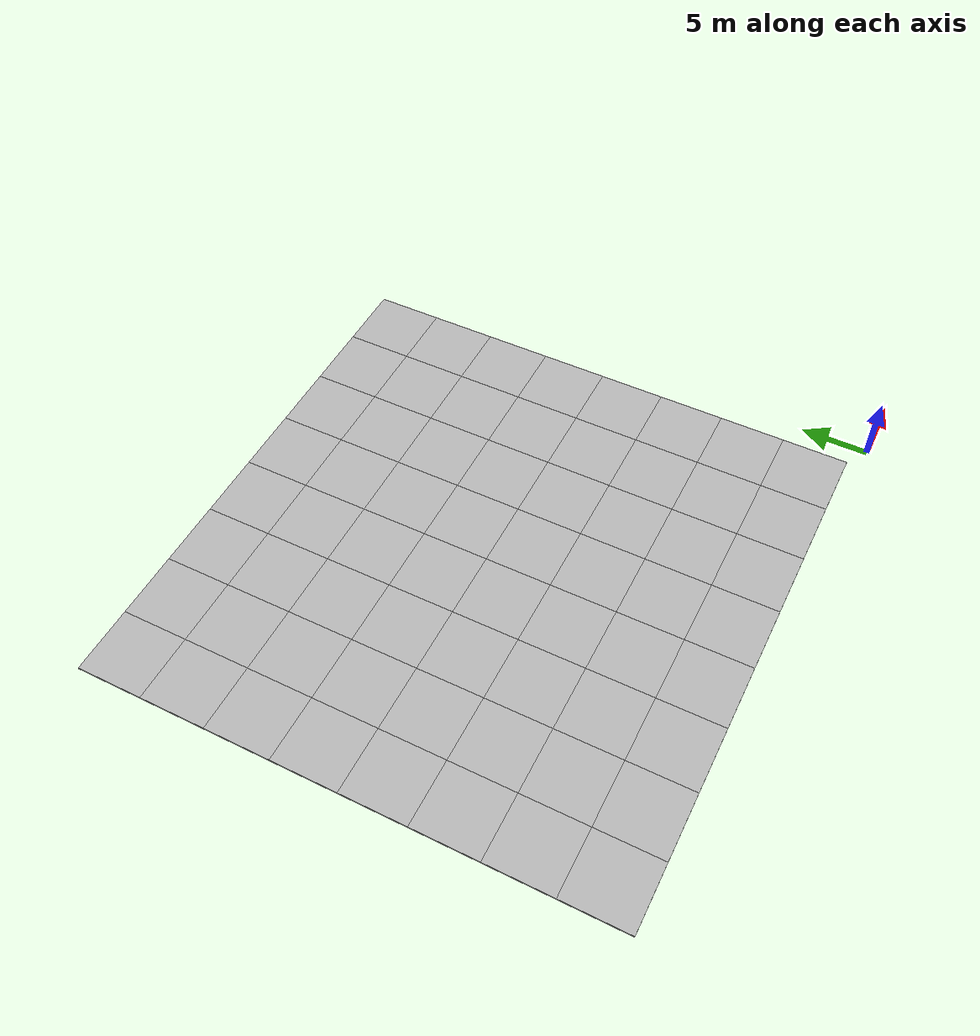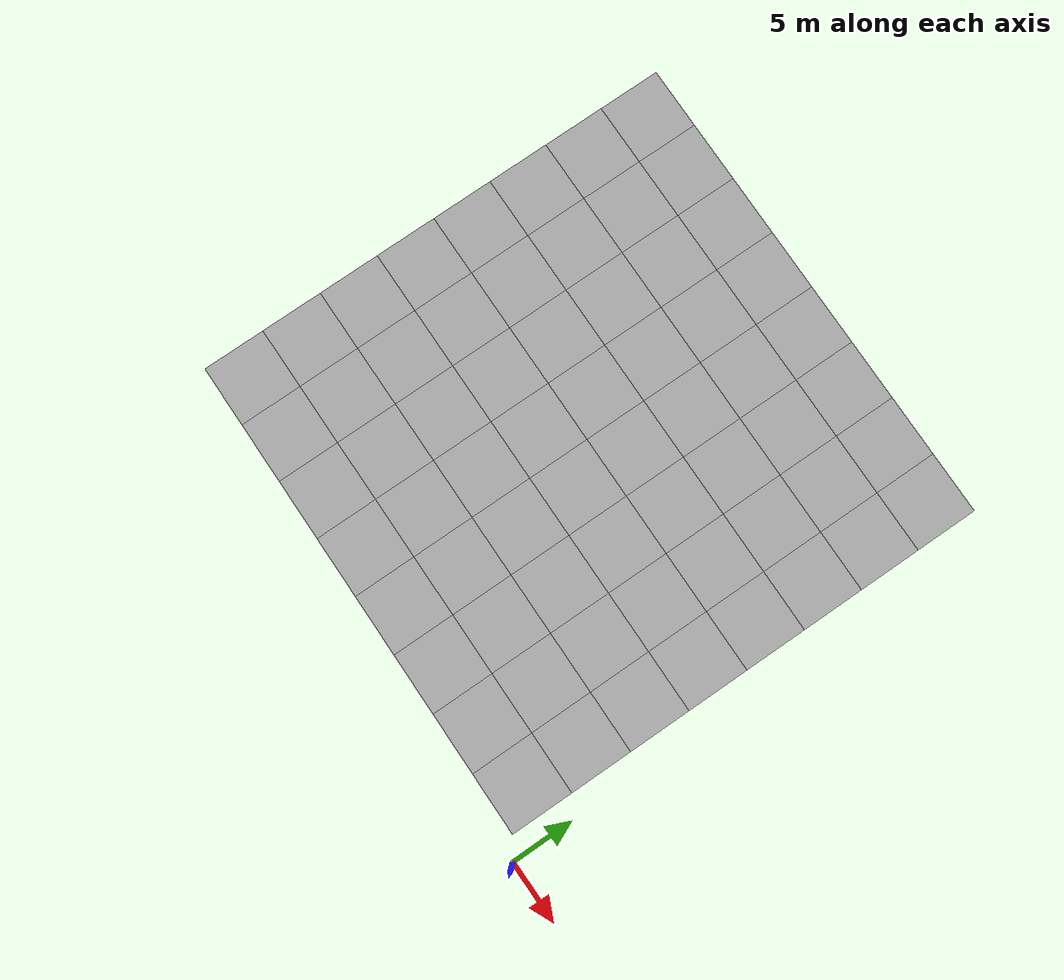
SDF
<sdf version="1.7">
 <world name="default">
  <model name="mud_plane_80x80_1">
   <model name="mud_plane_40x40_0">
    <model name="mud_plane_20x20">
     <model name="mud_plane">
      <static>1</static>
      <link name="link">
       <collision name="collision"><geometry><box><size>10 10 0.1</size></box></geometry></collision>
       <visual name="visual_1">
        <pose>-2.5 2.5 -0.05 0 -0 0</pose>
        <cast_shadows>0</cast_shadows>
        <geometry><box><size>5 5 0.1</size></box></geometry>
        <material>
         <script>
          <uri>model://mud_plane/materials/scripts</uri>
          <uri>model://mud_plane/materials/textures</uri>
          <name>vrc/mud</name>
         </script>
        </material>
       </visual>
       <visual name="visual_2">
        <pose>2.5 2.5 -0.05 0 -0 0</pose>
        <cast_shadows>0</cast_shadows>
        <geometry><box><size>5 5 0.1</size></box></geometry>
        <material>
         <script>
          <uri>model://mud_plane/materials/scripts</uri>
          <uri>model://mud_plane/materials/textures</uri>
          <name>vrc/mud</name>
         </script>
        </material>
       </visual>
       <visual name="visual_3">
        <pose>2.5 -2.5 -0.05 0 -0 0</pose>
        <cast_shadows>0</cast_shadows>
        <geometry><box><size>5 5 0.1</size></box></geometry>
        <material>
         <script>
          <uri>model://mud_plane/materials/scripts</uri>
          <uri>model://mud_plane/materials/textures</uri>
          <name>vrc/mud</name>
         </script>
        </material>
       </visual>
       <visual name="visual_4">
        <pose>-2.5 -2.5 -0.05 0 -0 0</pose>
        <cast_shadows>0</cast_shadows>
        <geometry><box><size>5 5 0.1</size></box></geometry>
        <material>
         <script>
          <uri>model://mud_plane/materials/scripts</uri>
          <uri>model://mud_plane/materials/textures</uri>
          <name>vrc/mud</name>
         </script>
        </material>
       </visual>
      </link>
      <pose>-4.99986 -4.99991 0 0 -0 0</pose>
     </model>
     <model name="mud_plane_0">
      <static>1</static>
      <link name="link">
       <collision name="collision"><geometry><box><size>10 10 0.1</size></box></geometry></collision>
       <visual name="visual_1">
        <pose>-2.5 2.5 -0.05 0 -0 0</pose>
        <cast_shadows>0</cast_shadows>
        <geometry><box><size>5 5 0.1</size></box></geometry>
        <material>
         <script>
          <uri>model://mud_plane/materials/scripts</uri>
          <uri>model://mud_plane/materials/textures</uri>
          <name>vrc/mud</name>
         </script>
        </material>
       </visual>
       <visual name="visual_2">
        <pose>2.5 2.5 -0.05 0 -0 0</pose>
        <cast_shadows>0</cast_shadows>
        <geometry><box><size>5 5 0.1</size></box></geometry>
        <material>
         <script>
          <uri>model://mud_plane/materials/scripts</uri>
          <uri>model://mud_plane/materials/textures</uri>
          <name>vrc/mud</name>
         </script>
        </material>
       </visual>
       <visual name="visual_3">
        <pose>2.5 -2.5 -0.05 0 -0 0</pose>
        <cast_shadows>0</cast_shadows>
        <geometry><box><size>5 5 0.1</size></box></geometry>
        <material>
         <script>
          <uri>model://mud_plane/materials/scripts</uri>
          <uri>model://mud_plane/materials/textures</uri>
          <name>vrc/mud</name>
         </script>
        </material>
       </visual>
       <visual name="visual_4">
        <pose>-2.5 -2.5 -0.05 0 -0 0</pose>
        <cast_shadows>0</cast_shadows>
        <geometry><box><size>5 5 0.1</size></box></geometry>
        <material>
         <script>
          <uri>model://mud_plane/materials/scripts</uri>
          <uri>model://mud_plane/materials/textures</uri>
          <name>vrc/mud</name>
         </script>
        </material>
       </visual>
      </link>
      <pose>-4.99946 4.99954 0 0 -0 0</pose>
     </model>
     <model name="mud_plane_1">
      <static>1</static>
      <link name="link">
       <collision name="collision"><geometry><box><size>10 10 0.1</size></box></geometry></collision>
       <visual name="visual_1">
        <pose>-2.5 2.5 -0.05 0 -0 0</pose>
        <cast_shadows>0</cast_shadows>
        <geometry><box><size>5 5 0.1</size></box></geometry>
        <material>
         <script>
          <uri>model://mud_plane/materials/scripts</uri>
          <uri>model://mud_plane/materials/textures</uri>
          <name>vrc/mud</name>
         </script>
        </material>
       </visual>
       <visual name="visual_2">
        <pose>2.5 2.5 -0.05 0 -0 0</pose>
        <cast_shadows>0</cast_shadows>
        <geometry><box><size>5 5 0.1</size></box></geometry>
        <material>
         <script>
          <uri>model://mud_plane/materials/scripts</uri>
          <uri>model://mud_plane/materials/textures</uri>
          <name>vrc/mud</name>
         </script>
        </material>
       </visual>
       <visual name="visual_3">
        <pose>2.5 -2.5 -0.05 0 -0 0</pose>
        <cast_shadows>0</cast_shadows>
        <geometry><box><size>5 5 0.1</size></box></geometry>
        <material>
         <script>
          <uri>model://mud_plane/materials/scripts</uri>
          <uri>model://mud_plane/materials/textures</uri>
          <name>vrc/mud</name>
         </script>
        </material>
       </visual>
       <visual name="visual_4">
        <pose>-2.5 -2.5 -0.05 0 -0 0</pose>
        <cast_shadows>0</cast_shadows>
        <geometry><box><size>5 5 0.1</size></box></geometry>
        <material>
         <script>
          <uri>model://mud_plane/materials/scripts</uri>
          <uri>model://mud_plane/materials/textures</uri>
          <name>vrc/mud</name>
         </script>
        </material>
       </visual>
      </link>
      <pose>4.99964 -4.99949 0 0 -0 0</pose>
     </model>
     <model name="mud_plane_2">
      <static>1</static>
      <link name="link">
       <collision name="collision"><geometry><box><size>10 10 0.1</size></box></geometry></collision>
       <visual name="visual_1">
        <pose>-2.5 2.5 -0.05 0 -0 0</pose>
        <cast_shadows>0</cast_shadows>
        <geometry><box><size>5 5 0.1</size></box></geometry>
        <material>
         <script>
          <uri>model://mud_plane/materials/scripts</uri>
          <uri>model://mud_plane/materials/textures</uri>
          <name>vrc/mud</name>
         </script>
        </material>
       </visual>
       <visual name="visual_2">
        <pose>2.5 2.5 -0.05 0 -0 0</pose>
        <cast_shadows>0</cast_shadows>
        <geometry><box><size>5 5 0.1</size></box></geometry>
        <material>
         <script>
          <uri>model://mud_plane/materials/scripts</uri>
          <uri>model://mud_plane/materials/textures</uri>
          <name>vrc/mud</name>
         </script>
        </material>
       </visual>
       <visual name="visual_3">
        <pose>2.5 -2.5 -0.05 0 -0 0</pose>
        <cast_shadows>0</cast_shadows>
        <geometry><box><size>5 5 0.1</size></box></geometry>
        <material>
         <script>
          <uri>model://mud_plane/materials/scripts</uri>
          <uri>model://mud_plane/materials/textures</uri>
          <name>vrc/mud</name>
         </script>
        </material>
       </visual>
       <visual name="visual_4">
        <pose>-2.5 -2.5 -0.05 0 -0 0</pose>
        <cast_shadows>0</cast_shadows>
        <geometry><box><size>5 5 0.1</size></box></geometry>
        <material>
         <script>
          <uri>model://mud_plane/materials/scripts</uri>
          <uri>model://mud_plane/materials/textures</uri>
          <name>vrc/mud</name>
         </script>
        </material>
       </visual>
      </link>
      <pose>4.99967 4.99986 0 0 -0 0</pose>
     </model>
     <static>0</static>
     <pose>-9.99895 9.99843 0 0 -0 0</pose>
    </model>
    <model name="mud_plane_20x20_0">
     <model name="mud_plane">
      <static>1</static>
      <link name="link">
       <collision name="collision"><geometry><box><size>10 10 0.1</size></box></geometry></collision>
       <visual name="visual_1">
        <pose>-2.5 2.5 -0.05 0 -0 0</pose>
        <cast_shadows>0</cast_shadows>
        <geometry><box><size>5 5 0.1</size></box></geometry>
        <material>
         <script>
          <uri>model://mud_plane/materials/scripts</uri>
          <uri>model://mud_plane/materials/textures</uri>
          <name>vrc/mud</name>
         </script>
        </material>
       </visual>
       <visual name="visual_2">
        <pose>2.5 2.5 -0.05 0 -0 0</pose>
        <cast_shadows>0</cast_shadows>
        <geometry><box><size>5 5 0.1</size></box></geometry>
        <material>
         <script>
          <uri>model://mud_plane/materials/scripts</uri>
          <uri>model://mud_plane/materials/textures</uri>
          <name>vrc/mud</name>
         </script>
        </material>
       </visual>
       <visual name="visual_3">
        <pose>2.5 -2.5 -0.05 0 -0 0</pose>
        <cast_shadows>0</cast_shadows>
        <geometry><box><size>5 5 0.1</size></box></geometry>
        <material>
         <script>
          <uri>model://mud_plane/materials/scripts</uri>
          <uri>model://mud_plane/materials/textures</uri>
          <name>vrc/mud</name>
         </script>
        </material>
       </visual>
       <visual name="visual_4">
        <pose>-2.5 -2.5 -0.05 0 -0 0</pose>
        <cast_shadows>0</cast_shadows>
        <geometry><box><size>5 5 0.1</size></box></geometry>
        <material>
         <script>
          <uri>model://mud_plane/materials/scripts</uri>
          <uri>model://mud_plane/materials/textures</uri>
          <name>vrc/mud</name>
         </script>
        </material>
       </visual>
      </link>
      <pose>-4.99986 -4.99991 0 0 -0 0</pose>
     </model>
     <model name="mud_plane_0">
      <static>1</static>
      <link name="link">
       <collision name="collision"><geometry><box><size>10 10 0.1</size></box></geometry></collision>
       <visual name="visual_1">
        <pose>-2.5 2.5 -0.05 0 -0 0</pose>
        <cast_shadows>0</cast_shadows>
        <geometry><box><size>5 5 0.1</size></box></geometry>
        <material>
         <script>
          <uri>model://mud_plane/materials/scripts</uri>
          <uri>model://mud_plane/materials/textures</uri>
          <name>vrc/mud</name>
         </script>
        </material>
       </visual>
       <visual name="visual_2">
        <pose>2.5 2.5 -0.05 0 -0 0</pose>
        <cast_shadows>0</cast_shadows>
        <geometry><box><size>5 5 0.1</size></box></geometry>
        <material>
         <script>
          <uri>model://mud_plane/materials/scripts</uri>
          <uri>model://mud_plane/materials/textures</uri>
          <name>vrc/mud</name>
         </script>
        </material>
       </visual>
       <visual name="visual_3">
        <pose>2.5 -2.5 -0.05 0 -0 0</pose>
        <cast_shadows>0</cast_shadows>
        <geometry><box><size>5 5 0.1</size></box></geometry>
        <material>
         <script>
          <uri>model://mud_plane/materials/scripts</uri>
          <uri>model://mud_plane/materials/textures</uri>
          <name>vrc/mud</name>
         </script>
        </material>
       </visual>
       <visual name="visual_4">
        <pose>-2.5 -2.5 -0.05 0 -0 0</pose>
        <cast_shadows>0</cast_shadows>
        <geometry><box><size>5 5 0.1</size></box></geometry>
        <material>
         <script>
          <uri>model://mud_plane/materials/scripts</uri>
          <uri>model://mud_plane/materials/textures</uri>
          <name>vrc/mud</name>
         </script>
        </material>
       </visual>
      </link>
      <pose>-4.99946 4.99954 0 0 -0 0</pose>
     </model>
     <model name="mud_plane_1">
      <static>1</static>
      <link name="link">
       <collision name="collision"><geometry><box><size>10 10 0.1</size></box></geometry></collision>
       <visual name="visual_1">
        <pose>-2.5 2.5 -0.05 0 -0 0</pose>
        <cast_shadows>0</cast_shadows>
        <geometry><box><size>5 5 0.1</size></box></geometry>
        <material>
         <script>
          <uri>model://mud_plane/materials/scripts</uri>
          <uri>model://mud_plane/materials/textures</uri>
          <name>vrc/mud</name>
         </script>
        </material>
       </visual>
       <visual name="visual_2">
        <pose>2.5 2.5 -0.05 0 -0 0</pose>
        <cast_shadows>0</cast_shadows>
        <geometry><box><size>5 5 0.1</size></box></geometry>
        <material>
         <script>
          <uri>model://mud_plane/materials/scripts</uri>
          <uri>model://mud_plane/materials/textures</uri>
          <name>vrc/mud</name>
         </script>
        </material>
       </visual>
       <visual name="visual_3">
        <pose>2.5 -2.5 -0.05 0 -0 0</pose>
        <cast_shadows>0</cast_shadows>
        <geometry><box><size>5 5 0.1</size></box></geometry>
        <material>
         <script>
          <uri>model://mud_plane/materials/scripts</uri>
          <uri>model://mud_plane/materials/textures</uri>
          <name>vrc/mud</name>
         </script>
        </material>
       </visual>
       <visual name="visual_4">
        <pose>-2.5 -2.5 -0.05 0 -0 0</pose>
        <cast_shadows>0</cast_shadows>
        <geometry><box><size>5 5 0.1</size></box></geometry>
        <material>
         <script>
          <uri>model://mud_plane/materials/scripts</uri>
          <uri>model://mud_plane/materials/textures</uri>
          <name>vrc/mud</name>
         </script>
        </material>
       </visual>
      </link>
      <pose>4.99964 -4.99949 0 0 -0 0</pose>
     </model>
     <model name="mud_plane_2">
      <static>1</static>
      <link name="link">
       <collision name="collision"><geometry><box><size>10 10 0.1</size></box></geometry></collision>
       <visual name="visual_1">
        <pose>-2.5 2.5 -0.05 0 -0 0</pose>
        <cast_shadows>0</cast_shadows>
        <geometry><box><size>5 5 0.1</size></box></geometry>
        <material>
         <script>
          <uri>model://mud_plane/materials/scripts</uri>
          <uri>model://mud_plane/materials/textures</uri>
          <name>vrc/mud</name>
         </script>
        </material>
       </visual>
       <visual name="visual_2">
        <pose>2.5 2.5 -0.05 0 -0 0</pose>
        <cast_shadows>0</cast_shadows>
        <geometry><box><size>5 5 0.1</size></box></geometry>
        <material>
         <script>
          <uri>model://mud_plane/materials/scripts</uri>
          <uri>model://mud_plane/materials/textures</uri>
          <name>vrc/mud</name>
         </script>
        </material>
       </visual>
       <visual name="visual_3">
        <pose>2.5 -2.5 -0.05 0 -0 0</pose>
        <cast_shadows>0</cast_shadows>
        <geometry><box><size>5 5 0.1</size></box></geometry>
        <material>
         <script>
          <uri>model://mud_plane/materials/scripts</uri>
          <uri>model://mud_plane/materials/textures</uri>
          <name>vrc/mud</name>
         </script>
        </material>
       </visual>
       <visual name="visual_4">
        <pose>-2.5 -2.5 -0.05 0 -0 0</pose>
        <cast_shadows>0</cast_shadows>
        <geometry><box><size>5 5 0.1</size></box></geometry>
        <material>
         <script>
          <uri>model://mud_plane/materials/scripts</uri>
          <uri>model://mud_plane/materials/textures</uri>
          <name>vrc/mud</name>
         </script>
        </material>
       </visual>
      </link>
      <pose>4.99967 4.99986 0 0 -0 0</pose>
     </model>
     <static>0</static>
     <pose>9.99933 9.9997 0 0 -0 0</pose>
    </model>
    <model name="mud_plane_20x20_1">
     <model name="mud_plane">
      <static>1</static>
      <link name="link">
       <collision name="collision"><geometry><box><size>10 10 0.1</size></box></geometry></collision>
       <visual name="visual_1">
        <pose>-2.5 2.5 -0.05 0 -0 0</pose>
        <cast_shadows>0</cast_shadows>
        <geometry><box><size>5 5 0.1</size></box></geometry>
        <material>
         <script>
          <uri>model://mud_plane/materials/scripts</uri>
          <uri>model://mud_plane/materials/textures</uri>
          <name>vrc/mud</name>
         </script>
        </material>
       </visual>
       <visual name="visual_2">
        <pose>2.5 2.5 -0.05 0 -0 0</pose>
        <cast_shadows>0</cast_shadows>
        <geometry><box><size>5 5 0.1</size></box></geometry>
        <material>
         <script>
          <uri>model://mud_plane/materials/scripts</uri>
          <uri>model://mud_plane/materials/textures</uri>
          <name>vrc/mud</name>
         </script>
        </material>
       </visual>
       <visual name="visual_3">
        <pose>2.5 -2.5 -0.05 0 -0 0</pose>
        <cast_shadows>0</cast_shadows>
        <geometry><box><size>5 5 0.1</size></box></geometry>
        <material>
         <script>
          <uri>model://mud_plane/materials/scripts</uri>
          <uri>model://mud_plane/materials/textures</uri>
          <name>vrc/mud</name>
         </script>
        </material>
       </visual>
       <visual name="visual_4">
        <pose>-2.5 -2.5 -0.05 0 -0 0</pose>
        <cast_shadows>0</cast_shadows>
        <geometry><box><size>5 5 0.1</size></box></geometry>
        <material>
         <script>
          <uri>model://mud_plane/materials/scripts</uri>
          <uri>model://mud_plane/materials/textures</uri>
          <name>vrc/mud</name>
         </script>
        </material>
       </visual>
      </link>
      <pose>-4.99986 -4.99991 0 0 -0 0</pose>
     </model>
     <model name="mud_plane_0">
      <static>1</static>
      <link name="link">
       <collision name="collision"><geometry><box><size>10 10 0.1</size></box></geometry></collision>
       <visual name="visual_1">
        <pose>-2.5 2.5 -0.05 0 -0 0</pose>
        <cast_shadows>0</cast_shadows>
        <geometry><box><size>5 5 0.1</size></box></geometry>
        <material>
         <script>
          <uri>model://mud_plane/materials/scripts</uri>
          <uri>model://mud_plane/materials/textures</uri>
          <name>vrc/mud</name>
         </script>
        </material>
       </visual>
       <visual name="visual_2">
        <pose>2.5 2.5 -0.05 0 -0 0</pose>
        <cast_shadows>0</cast_shadows>
        <geometry><box><size>5 5 0.1</size></box></geometry>
        <material>
         <script>
          <uri>model://mud_plane/materials/scripts</uri>
          <uri>model://mud_plane/materials/textures</uri>
          <name>vrc/mud</name>
         </script>
        </material>
       </visual>
       <visual name="visual_3">
        <pose>2.5 -2.5 -0.05 0 -0 0</pose>
        <cast_shadows>0</cast_shadows>
        <geometry><box><size>5 5 0.1</size></box></geometry>
        <material>
         <script>
          <uri>model://mud_plane/materials/scripts</uri>
          <uri>model://mud_plane/materials/textures</uri>
          <name>vrc/mud</name>
         </script>
        </material>
       </visual>
       <visual name="visual_4">
        <pose>-2.5 -2.5 -0.05 0 -0 0</pose>
        <cast_shadows>0</cast_shadows>
        <geometry><box><size>5 5 0.1</size></box></geometry>
        <material>
         <script>
          <uri>model://mud_plane/materials/scripts</uri>
          <uri>model://mud_plane/materials/textures</uri>
          <name>vrc/mud</name>
         </script>
        </material>
       </visual>
      </link>
      <pose>-4.99946 4.99954 0 0 -0 0</pose>
     </model>
     <model name="mud_plane_1">
      <static>1</static>
      <link name="link">
       <collision name="collision"><geometry><box><size>10 10 0.1</size></box></geometry></collision>
       <visual name="visual_1">
        <pose>-2.5 2.5 -0.05 0 -0 0</pose>
        <cast_shadows>0</cast_shadows>
        <geometry><box><size>5 5 0.1</size></box></geometry>
        <material>
         <script>
          <uri>model://mud_plane/materials/scripts</uri>
          <uri>model://mud_plane/materials/textures</uri>
          <name>vrc/mud</name>
         </script>
        </material>
       </visual>
       <visual name="visual_2">
        <pose>2.5 2.5 -0.05 0 -0 0</pose>
        <cast_shadows>0</cast_shadows>
        <geometry><box><size>5 5 0.1</size></box></geometry>
        <material>
         <script>
          <uri>model://mud_plane/materials/scripts</uri>
          <uri>model://mud_plane/materials/textures</uri>
          <name>vrc/mud</name>
         </script>
        </material>
       </visual>
       <visual name="visual_3">
        <pose>2.5 -2.5 -0.05 0 -0 0</pose>
        <cast_shadows>0</cast_shadows>
        <geometry><box><size>5 5 0.1</size></box></geometry>
        <material>
         <script>
          <uri>model://mud_plane/materials/scripts</uri>
          <uri>model://mud_plane/materials/textures</uri>
          <name>vrc/mud</name>
         </script>
        </material>
       </visual>
       <visual name="visual_4">
        <pose>-2.5 -2.5 -0.05 0 -0 0</pose>
        <cast_shadows>0</cast_shadows>
        <geometry><box><size>5 5 0.1</size></box></geometry>
        <material>
         <script>
          <uri>model://mud_plane/materials/scripts</uri>
          <uri>model://mud_plane/materials/textures</uri>
          <name>vrc/mud</name>
         </script>
        </material>
       </visual>
      </link>
      <pose>4.99964 -4.99949 0 0 -0 0</pose>
     </model>
     <model name="mud_plane_2">
      <static>1</static>
      <link name="link">
       <collision name="collision"><geometry><box><size>10 10 0.1</size></box></geometry></collision>
       <visual name="visual_1">
        <pose>-2.5 2.5 -0.05 0 -0 0</pose>
        <cast_shadows>0</cast_shadows>
        <geometry><box><size>5 5 0.1</size></box></geometry>
        <material>
         <script>
          <uri>model://mud_plane/materials/scripts</uri>
          <uri>model://mud_plane/materials/textures</uri>
          <name>vrc/mud</name>
         </script>
        </material>
       </visual>
       <visual name="visual_2">
        <pose>2.5 2.5 -0.05 0 -0 0</pose>
        <cast_shadows>0</cast_shadows>
        <geometry><box><size>5 5 0.1</size></box></geometry>
        <material>
         <script>
          <uri>model://mud_plane/materials/scripts</uri>
          <uri>model://mud_plane/materials/textures</uri>
          <name>vrc/mud</name>
         </script>
        </material>
       </visual>
       <visual name="visual_3">
        <pose>2.5 -2.5 -0.05 0 -0 0</pose>
        <cast_shadows>0</cast_shadows>
        <geometry><box><size>5 5 0.1</size></box></geometry>
        <material>
         <script>
          <uri>model://mud_plane/materials/scripts</uri>
          <uri>model://mud_plane/materials/textures</uri>
          <name>vrc/mud</name>
         </script>
        </material>
       </visual>
       <visual name="visual_4">
        <pose>-2.5 -2.5 -0.05 0 -0 0</pose>
        <cast_shadows>0</cast_shadows>
        <geometry><box><size>5 5 0.1</size></box></geometry>
        <material>
         <script>
          <uri>model://mud_plane/materials/scripts</uri>
          <uri>model://mud_plane/materials/textures</uri>
          <name>vrc/mud</name>
         </script>
        </material>
       </visual>
      </link>
      <pose>4.99967 4.99986 0 0 -0 0</pose>
     </model>
     <static>0</static>
     <pose>9.9993 -9.99877 0 0 -0 0</pose>
    </model>
    <model name="mud_plane_20x20_2">
     <model name="mud_plane">
      <static>1</static>
      <link name="link">
       <collision name="collision"><geometry><box><size>10 10 0.1</size></box></geometry></collision>
       <visual name="visual_1">
        <pose>-2.5 2.5 -0.05 0 -0 0</pose>
        <cast_shadows>0</cast_shadows>
        <geometry><box><size>5 5 0.1</size></box></geometry>
        <material>
         <script>
          <uri>model://mud_plane/materials/scripts</uri>
          <uri>model://mud_plane/materials/textures</uri>
          <name>vrc/mud</name>
         </script>
        </material>
       </visual>
       <visual name="visual_2">
        <pose>2.5 2.5 -0.05 0 -0 0</pose>
        <cast_shadows>0</cast_shadows>
        <geometry><box><size>5 5 0.1</size></box></geometry>
        <material>
         <script>
          <uri>model://mud_plane/materials/scripts</uri>
          <uri>model://mud_plane/materials/textures</uri>
          <name>vrc/mud</name>
         </script>
        </material>
       </visual>
       <visual name="visual_3">
        <pose>2.5 -2.5 -0.05 0 -0 0</pose>
        <cast_shadows>0</cast_shadows>
        <geometry><box><size>5 5 0.1</size></box></geometry>
        <material>
         <script>
          <uri>model://mud_plane/materials/scripts</uri>
          <uri>model://mud_plane/materials/textures</uri>
          <name>vrc/mud</name>
         </script>
        </material>
       </visual>
       <visual name="visual_4">
        <pose>-2.5 -2.5 -0.05 0 -0 0</pose>
        <cast_shadows>0</cast_shadows>
        <geometry><box><size>5 5 0.1</size></box></geometry>
        <material>
         <script>
          <uri>model://mud_plane/materials/scripts</uri>
          <uri>model://mud_plane/materials/textures</uri>
          <name>vrc/mud</name>
         </script>
        </material>
       </visual>
      </link>
      <pose>-4.99986 -4.99991 0 0 -0 0</pose>
     </model>
     <model name="mud_plane_0">
      <static>1</static>
      <link name="link">
       <collision name="collision"><geometry><box><size>10 10 0.1</size></box></geometry></collision>
       <visual name="visual_1">
        <pose>-2.5 2.5 -0.05 0 -0 0</pose>
        <cast_shadows>0</cast_shadows>
        <geometry><box><size>5 5 0.1</size></box></geometry>
        <material>
         <script>
          <uri>model://mud_plane/materials/scripts</uri>
          <uri>model://mud_plane/materials/textures</uri>
          <name>vrc/mud</name>
         </script>
        </material>
       </visual>
       <visual name="visual_2">
        <pose>2.5 2.5 -0.05 0 -0 0</pose>
        <cast_shadows>0</cast_shadows>
        <geometry><box><size>5 5 0.1</size></box></geometry>
        <material>
         <script>
          <uri>model://mud_plane/materials/scripts</uri>
          <uri>model://mud_plane/materials/textures</uri>
          <name>vrc/mud</name>
         </script>
        </material>
       </visual>
       <visual name="visual_3">
        <pose>2.5 -2.5 -0.05 0 -0 0</pose>
        <cast_shadows>0</cast_shadows>
        <geometry><box><size>5 5 0.1</size></box></geometry>
        <material>
         <script>
          <uri>model://mud_plane/materials/scripts</uri>
          <uri>model://mud_plane/materials/textures</uri>
          <name>vrc/mud</name>
         </script>
        </material>
       </visual>
       <visual name="visual_4">
        <pose>-2.5 -2.5 -0.05 0 -0 0</pose>
        <cast_shadows>0</cast_shadows>
        <geometry><box><size>5 5 0.1</size></box></geometry>
        <material>
         <script>
          <uri>model://mud_plane/materials/scripts</uri>
          <uri>model://mud_plane/materials/textures</uri>
          <name>vrc/mud</name>
         </script>
        </material>
       </visual>
      </link>
      <pose>-4.99946 4.99954 0 0 -0 0</pose>
     </model>
     <model name="mud_plane_1">
      <static>1</static>
      <link name="link">
       <collision name="collision"><geometry><box><size>10 10 0.1</size></box></geometry></collision>
       <visual name="visual_1">
        <pose>-2.5 2.5 -0.05 0 -0 0</pose>
        <cast_shadows>0</cast_shadows>
        <geometry><box><size>5 5 0.1</size></box></geometry>
        <material>
         <script>
          <uri>model://mud_plane/materials/scripts</uri>
          <uri>model://mud_plane/materials/textures</uri>
          <name>vrc/mud</name>
         </script>
        </material>
       </visual>
       <visual name="visual_2">
        <pose>2.5 2.5 -0.05 0 -0 0</pose>
        <cast_shadows>0</cast_shadows>
        <geometry><box><size>5 5 0.1</size></box></geometry>
        <material>
         <script>
          <uri>model://mud_plane/materials/scripts</uri>
          <uri>model://mud_plane/materials/textures</uri>
          <name>vrc/mud</name>
         </script>
        </material>
       </visual>
       <visual name="visual_3">
        <pose>2.5 -2.5 -0.05 0 -0 0</pose>
        <cast_shadows>0</cast_shadows>
        <geometry><box><size>5 5 0.1</size></box></geometry>
        <material>
         <script>
          <uri>model://mud_plane/materials/scripts</uri>
          <uri>model://mud_plane/materials/textures</uri>
          <name>vrc/mud</name>
         </script>
        </material>
       </visual>
       <visual name="visual_4">
        <pose>-2.5 -2.5 -0.05 0 -0 0</pose>
        <cast_shadows>0</cast_shadows>
        <geometry><box><size>5 5 0.1</size></box></geometry>
        <material>
         <script>
          <uri>model://mud_plane/materials/scripts</uri>
          <uri>model://mud_plane/materials/textures</uri>
          <name>vrc/mud</name>
         </script>
        </material>
       </visual>
      </link>
      <pose>4.99964 -4.99949 0 0 -0 0</pose>
     </model>
     <model name="mud_plane_2">
      <static>1</static>
      <link name="link">
       <collision name="collision"><geometry><box><size>10 10 0.1</size></box></geometry></collision>
       <visual name="visual_1">
        <pose>-2.5 2.5 -0.05 0 -0 0</pose>
        <cast_shadows>0</cast_shadows>
        <geometry><box><size>5 5 0.1</size></box></geometry>
        <material>
         <script>
          <uri>model://mud_plane/materials/scripts</uri>
          <uri>model://mud_plane/materials/textures</uri>
          <name>vrc/mud</name>
         </script>
        </material>
       </visual>
       <visual name="visual_2">
        <pose>2.5 2.5 -0.05 0 -0 0</pose>
        <cast_shadows>0</cast_shadows>
        <geometry><box><size>5 5 0.1</size></box></geometry>
        <material>
         <script>
          <uri>model://mud_plane/materials/scripts</uri>
          <uri>model://mud_plane/materials/textures</uri>
          <name>vrc/mud</name>
         </script>
        </material>
       </visual>
       <visual name="visual_3">
        <pose>2.5 -2.5 -0.05 0 -0 0</pose>
        <cast_shadows>0</cast_shadows>
        <geometry><box><size>5 5 0.1</size></box></geometry>
        <material>
         <script>
          <uri>model://mud_plane/materials/scripts</uri>
          <uri>model://mud_plane/materials/textures</uri>
          <name>vrc/mud</name>
         </script>
        </material>
       </visual>
       <visual name="visual_4">
        <pose>-2.5 -2.5 -0.05 0 -0 0</pose>
        <cast_shadows>0</cast_shadows>
        <geometry><box><size>5 5 0.1</size></box></geometry>
        <material>
         <script>
          <uri>model://mud_plane/materials/scripts</uri>
          <uri>model://mud_plane/materials/textures</uri>
          <name>vrc/mud</name>
         </script>
        </material>
       </visual>
      </link>
      <pose>4.99967 4.99986 0 0 -0 0</pose>
     </model>
     <static>0</static>
     <pose>-9.99969 -9.99935 0 0 -0 0</pose>
    </model>
    <static>0</static>
    <pose>19.9985 -19.998 0 0 -0 0</pose>
   </model>
   <static>0</static>
   <pose>-41.5873 41.0041 0 0 -0 0</pose>
  </model>
 </world>
</sdf>
